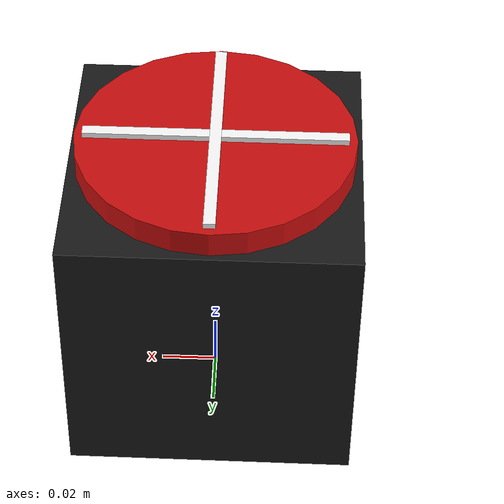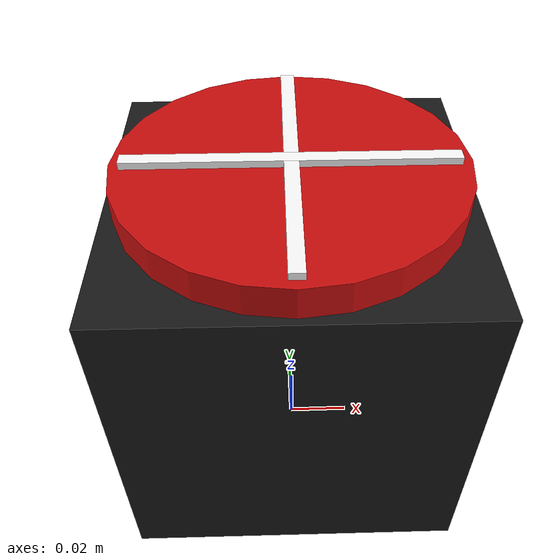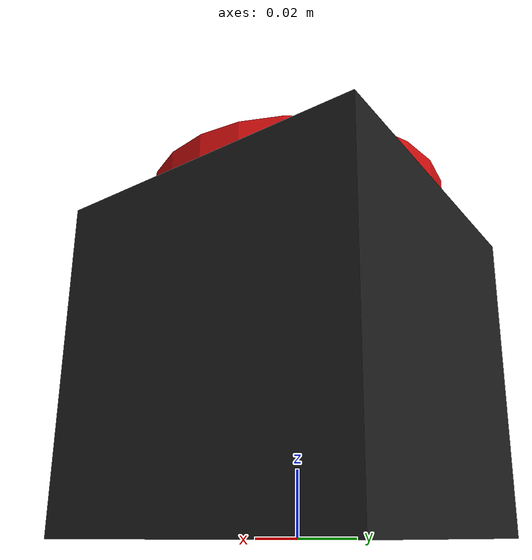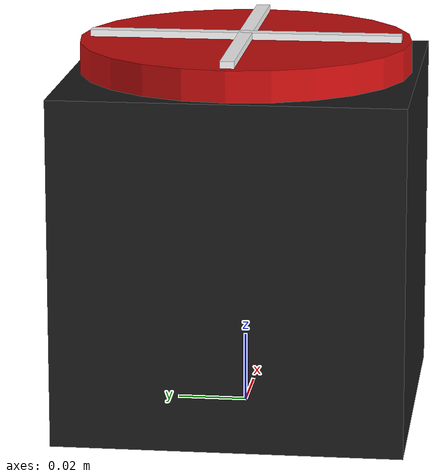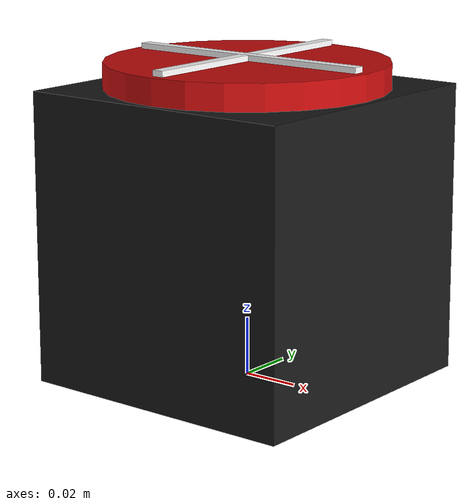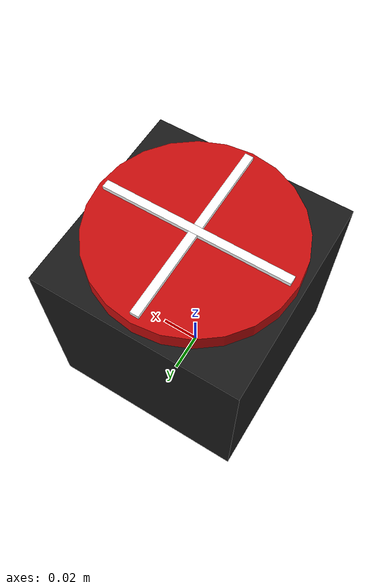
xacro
<?xml version="1.0"?>
<robot name="qube" xmlns:xacro="http://www.ros.org/wiki/xacro">

  <xacro:arg name="baud_rate"  default="115200"/>
  <xacro:arg name="device"     default="/dev/ttyACM0"/>
  <xacro:arg name="simulation" default="true"/>

  <xacro:include filename="$(find qube_description)/urdf/qube.macro.xacro"/>
  <xacro:include filename="$(find qube_driver)/ros2_control/qube_driver.ros2_control.xacro"/>

  <link name="world"/>
  <xacro:qube prefix=""/>

  <joint name="world_to_base" type="fixed">
    <parent link="world"/>
    <child link="base_link"/>
    <origin xyz="0 0 0"/>
  </joint>

  <xacro:qube_driver_ros2_control
    name="qube_driver"
    prefix=""
    baud_rate="$(arg baud_rate)"
    device="$(arg device)"
    simulation="$(arg simulation)"/>

</robot>

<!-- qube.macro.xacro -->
<robot xmlns:xacro="http://www.ros.org/wiki/xacro">

  <xacro:macro name="qube" params="prefix">

    <!-- Black base box -->
    <link name="${prefix}base_link">
      <visual>
        <origin xyz="0 0 0.05"/>
        <geometry>
          <box size="0.1 0.1 0.1"/>
        </geometry>
        <material name="black">
          <color rgba="0.1 0.1 0.1 1"/>
        </material>
      </visual>
    </link>

    <!-- Red disk (wide flat puck shape) -->
    <link name="${prefix}disk_link">
      <visual>
        <geometry>
          <cylinder radius="0.048" length="0.018"/>
        </geometry>
        <material name="red">
          <color rgba="0.8 0.05 0.05 1"/>
        </material>
      </visual>
    </link>

    <!-- White cross line 1 (horizontal) -->
    <link name="${prefix}pointer_h_link">
      <visual>
        <origin xyz="0 0 0.01"/>
        <geometry>
          <box size="0.09 0.004 0.002"/>
        </geometry>
        <material name="white">
          <color rgba="1 1 1 1"/>
        </material>
      </visual>
    </link>

    <!-- White cross line 2 (vertical) -->
    <link name="${prefix}pointer_v_link">
      <visual>
        <origin xyz="0 0 0.01"/>
        <geometry>
          <box size="0.004 0.09 0.002"/>
        </geometry>
        <material name="white">
          <color rgba="1 1 1 1"/>
        </material>
      </visual>
    </link>

    <!-- Motor joint -->
    <joint name="${prefix}motor_joint" type="continuous">
      <parent link="${prefix}base_link"/>
      <child link="${prefix}disk_link"/>
      <origin xyz="0 0 0.1"/>
      <axis xyz="0 0 1"/>
    </joint>

    <!-- Horizontal cross line fixed to disk -->
    <joint name="${prefix}pointer_h_joint" type="fixed">
      <parent link="${prefix}disk_link"/>
      <child link="${prefix}pointer_h_link"/>
      <origin xyz="0 0 0"/>
    </joint>

    <!-- Vertical cross line fixed to disk -->
    <joint name="${prefix}pointer_v_joint" type="fixed">
      <parent link="${prefix}disk_link"/>
      <child link="${prefix}pointer_v_link"/>
      <origin xyz="0 0 0"/>
    </joint>

  </xacro:macro>

</robot>
